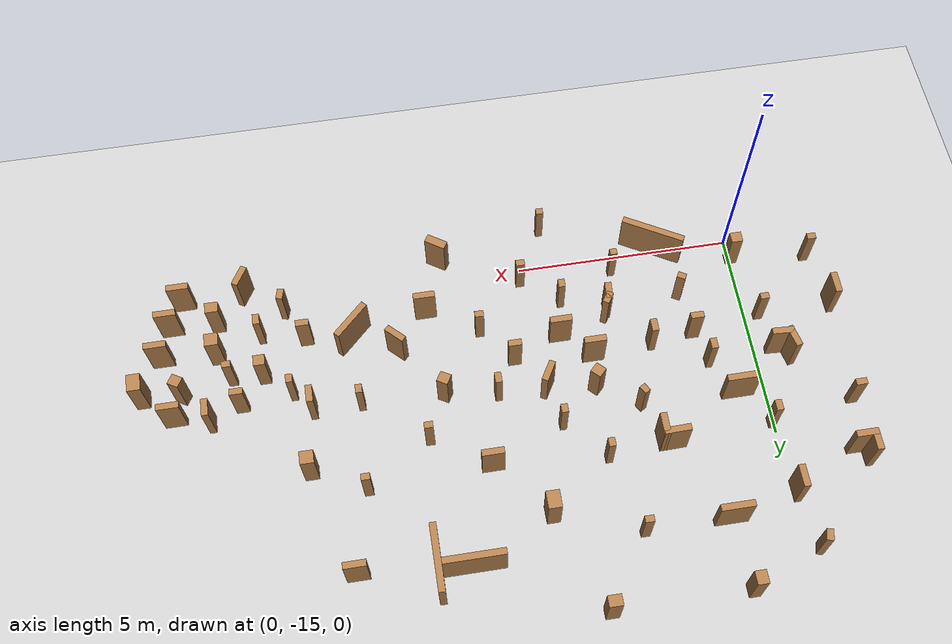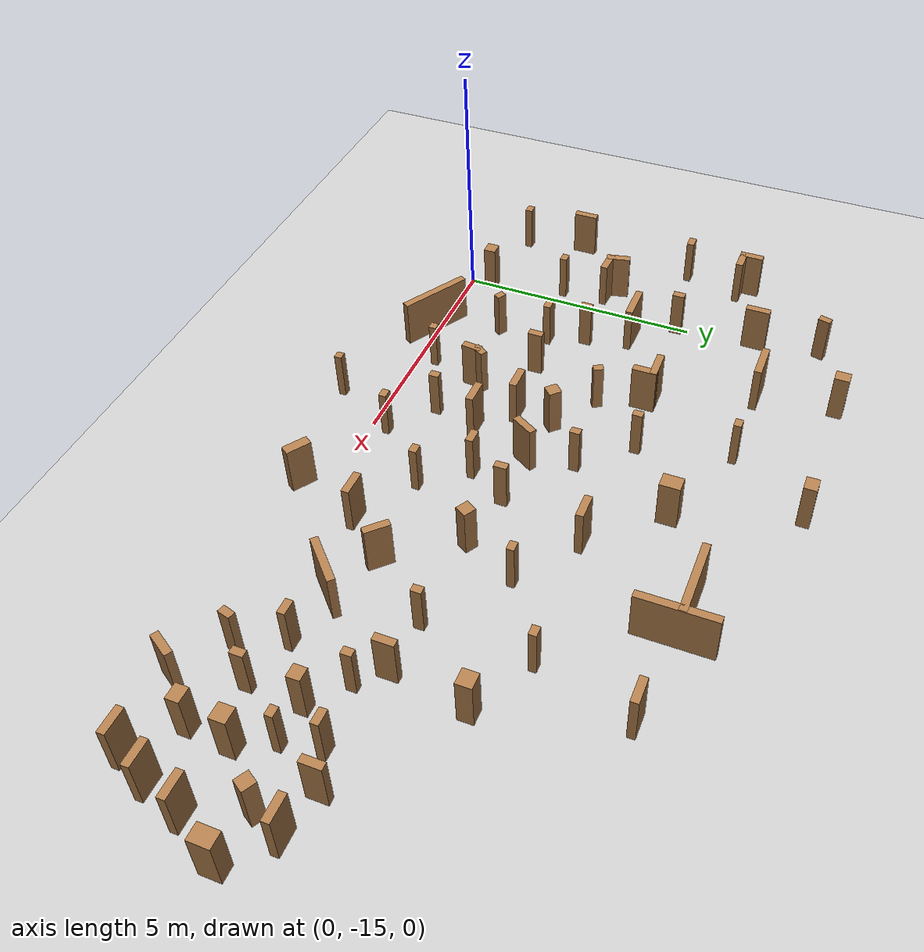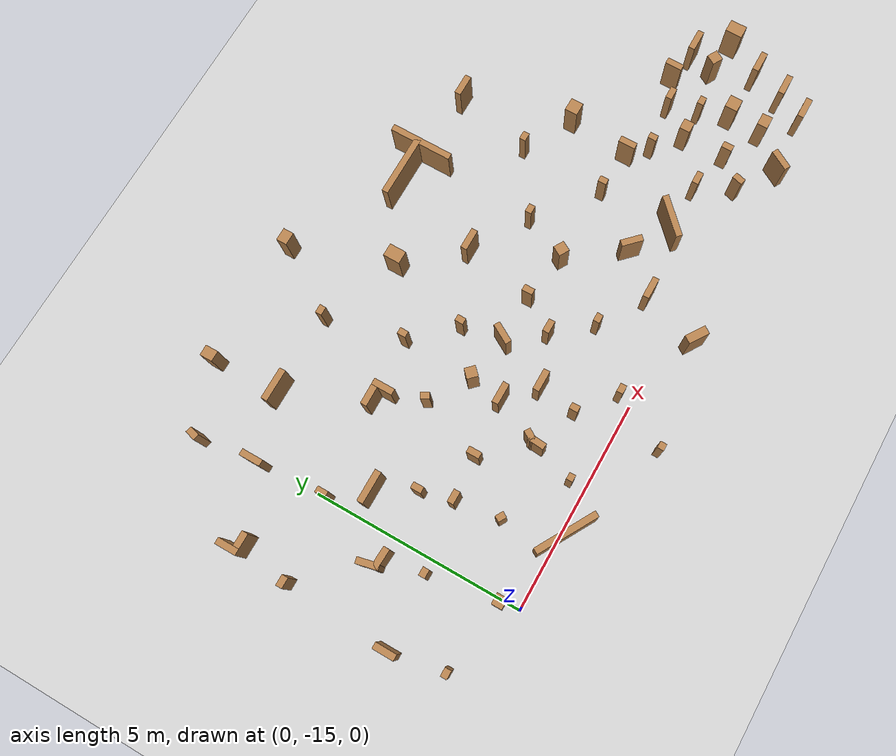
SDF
<sdf version="1.7">
 <world name="default">
  <model name="ground_plane">
   <static>1</static>
   <link name="link">
    <collision name="collision">
     <geometry><plane><normal>0 0 1</normal><size>100 100</size></plane></geometry>
     <surface><friction><ode><mu>100</mu><mu2>50</mu2></ode></friction></surface>
    </collision>
    <visual name="visual">
     <cast_shadows>0</cast_shadows>
     <geometry><plane><normal>0 0 1</normal><size>100 100</size></plane></geometry>
     <material>
      <script><uri>file://media/materials/scripts/gazebo.material</uri><name>Gazebo/Grey</name></script>
     </material>
    </visual>
   </link>
  </model>
  <model name="t1">
   <pose>4.20156 -11.2326 0 0 -0 0</pose>
   <link name="Wall_0">
    <collision name="Wall_0_Collision">
     <geometry><box><size>0.5 0.15 1</size></box></geometry>
     <pose>0 0 0.5 0 -0 0</pose>
    </collision>
    <visual name="Wall_0_Visual">
     <pose>0 0 0.5 0 -0 0</pose>
     <geometry><box><size>0.5 0.15 1</size></box></geometry>
     <material>
      <script><uri>file://media/materials/scripts/gazebo.material</uri><name>Gazebo/Wood</name></script>
      <ambient>1 1 1 1</ambient>
     </material>
     <meta><layer>0</layer></meta>
    </visual>
    <pose>0.174862 -1.84619 0 0 -0 0</pose>
   </link>
   <link name="Wall_10">
    <collision name="Wall_10_Collision">
     <geometry><box><size>0.16 0.15 1</size></box></geometry>
     <pose>0 0 0.5 0 -0 0</pose>
    </collision>
    <visual name="Wall_10_Visual">
     <pose>0 0 0.5 0 -0 0</pose>
     <geometry><box><size>0.16 0.15 1</size></box></geometry>
     <material>
      <script><uri>file://media/materials/scripts/gazebo.material</uri><name>Gazebo/Wood</name></script>
      <ambient>1 1 1 1</ambient>
     </material>
     <meta><layer>0</layer></meta>
    </visual>
    <pose>-1.33848 -3.38558 0 0 -0 0</pose>
   </link>
   <link name="Wall_101">
    <collision name="Wall_101_Collision">
     <geometry><box><size>0.3 0.25 1</size></box></geometry>
     <pose>0 0 0.5 0 -0 0</pose>
    </collision>
    <visual name="Wall_101_Visual">
     <pose>0 0 0.5 0 -0 0</pose>
     <geometry><box><size>0.3 0.25 1</size></box></geometry>
     <material>
      <script><uri>file://media/materials/scripts/gazebo.material</uri><name>Gazebo/Wood</name></script>
      <ambient>1 1 1 1</ambient>
     </material>
     <meta><layer>0</layer></meta>
    </visual>
    <pose>0.24444 4.67323 0 0 -0 0</pose>
   </link>
   <link name="Wall_103">
    <collision name="Wall_103_Collision">
     <geometry><box><size>0.3 0.25 1</size></box></geometry>
     <pose>0 0 0.5 0 -0 0</pose>
    </collision>
    <visual name="Wall_103_Visual">
     <pose>0 0 0.5 0 -0 0</pose>
     <geometry><box><size>0.3 0.25 1</size></box></geometry>
     <material>
      <script><uri>file://media/materials/scripts/gazebo.material</uri><name>Gazebo/Wood</name></script>
      <ambient>1 1 1 1</ambient>
     </material>
     <meta><layer>0</layer></meta>
    </visual>
    <pose>-2.80345 4.66938 0 0 -0 -1.5708</pose>
   </link>
   <link name="Wall_105">
    <collision name="Wall_105_Collision">
     <geometry><box><size>0.4 0.15 1</size></box></geometry>
     <pose>0 0 0.5 0 -0 0</pose>
    </collision>
    <visual name="Wall_105_Visual">
     <pose>0 0 0.5 0 -0 0</pose>
     <geometry><box><size>0.4 0.15 1</size></box></geometry>
     <material>
      <script><uri>file://media/materials/scripts/gazebo.material</uri><name>Gazebo/Wood</name></script>
      <ambient>1 1 1 1</ambient>
     </material>
     <meta><layer>0</layer></meta>
    </visual>
    <pose>5.96232 -0.895745 0 0 -0 -1.5708</pose>
   </link>
   <link name="Wall_12">
    <collision name="Wall_12_Collision">
     <geometry><box><size>0.2 0.15 1</size></box></geometry>
     <pose>0 0 0.5 0 -0 0</pose>
    </collision>
    <visual name="Wall_12_Visual">
     <pose>0 0 0.5 0 -0 0</pose>
     <geometry><box><size>0.2 0.15 1</size></box></geometry>
     <material>
      <script><uri>file://media/materials/scripts/gazebo.material</uri><name>Gazebo/Wood</name></script>
      <ambient>1 1 1 1</ambient>
     </material>
     <meta><layer>0</layer></meta>
    </visual>
    <pose>-1.33098 0.15162 0 0 -0 -1.0472</pose>
   </link>
   <link name="Wall_14">
    <collision name="Wall_14_Collision">
     <geometry><box><size>0.3 0.15 1</size></box></geometry>
     <pose>0 0 0.5 0 -0 0</pose>
    </collision>
    <visual name="Wall_14_Visual">
     <pose>0 0 0.5 0 -0 0</pose>
     <geometry><box><size>0.3 0.15 1</size></box></geometry>
     <material>
      <script><uri>file://media/materials/scripts/gazebo.material</uri><name>Gazebo/Wood</name></script>
      <ambient>1 1 1 1</ambient>
     </material>
     <meta><layer>0</layer></meta>
    </visual>
    <pose>-1.87614 -1.36219 0 0 -0 -1.5708</pose>
   </link>
   <link name="Wall_16">
    <collision name="Wall_16_Collision">
     <geometry><box><size>0.5 0.15 1</size></box></geometry>
     <pose>0 0 0.5 0 -0 0</pose>
    </collision>
    <visual name="Wall_16_Visual">
     <pose>0 0 0.5 0 -0 0</pose>
     <geometry><box><size>0.5 0.15 1</size></box></geometry>
     <material>
      <script><uri>file://media/materials/scripts/gazebo.material</uri><name>Gazebo/Wood</name></script>
      <ambient>1 1 1 1</ambient>
     </material>
     <meta><layer>0</layer></meta>
    </visual>
    <pose>3.92086 -2.06469 0 0 -0 -0.783378</pose>
   </link>
   <link name="Wall_18">
    <collision name="Wall_18_Collision">
     <geometry><box><size>0.2 0.15 1</size></box></geometry>
     <pose>0 0 0.5 0 -0 0</pose>
    </collision>
    <visual name="Wall_18_Visual">
     <pose>0 0 0.5 0 -0 0</pose>
     <geometry><box><size>0.2 0.15 1</size></box></geometry>
     <material>
      <script><uri>file://media/materials/scripts/gazebo.material</uri><name>Gazebo/Wood</name></script>
      <ambient>1 1 1 1</ambient>
     </material>
     <meta><layer>0</layer></meta>
    </visual>
    <pose>0.847759 -3.42904 0 0 -0 0</pose>
   </link>
   <link name="Wall_2">
    <collision name="Wall_2_Collision">
     <geometry><box><size>0.2 0.15 1</size></box></geometry>
     <pose>0 0 0.5 0 -0 0</pose>
    </collision>
    <visual name="Wall_2_Visual">
     <pose>0 0 0.5 0 -0 0</pose>
     <geometry><box><size>0.2 0.15 1</size></box></geometry>
     <material>
      <script><uri>file://media/materials/scripts/gazebo.material</uri><name>Gazebo/Wood</name></script>
      <ambient>1 1 1 1</ambient>
     </material>
     <meta><layer>0</layer></meta>
    </visual>
    <pose>1.98486 -2.25619 0 0 -0 3.14159</pose>
   </link>
   <link name="Wall_21">
    <collision name="Wall_21_Collision">
     <geometry><box><size>0.500017 0.2 1</size></box></geometry>
     <pose>0 0 0.5 0 -0 0</pose>
    </collision>
    <visual name="Wall_21_Visual">
     <pose>0 0 0.5 0 -0 0</pose>
     <geometry><box><size>0.500017 0.2 1</size></box></geometry>
     <material>
      <script><uri>file://media/materials/scripts/gazebo.material</uri><name>Gazebo/Wood</name></script>
      <ambient>1 1 1 1</ambient>
     </material>
     <meta><layer>0</layer></meta>
    </visual>
    <pose>2.69564 -4.29723 0 0 -0 -0.586607</pose>
   </link>
   <link name="Wall_23">
    <collision name="Wall_23_Collision">
     <geometry><box><size>0.16 0.15 1</size></box></geometry>
     <pose>0 0 0.5 0 -0 0</pose>
    </collision>
    <visual name="Wall_23_Visual">
     <pose>0 0 0.5 0 -0 0</pose>
     <geometry><box><size>0.16 0.15 1</size></box></geometry>
     <material>
      <script><uri>file://media/materials/scripts/gazebo.material</uri><name>Gazebo/Wood</name></script>
      <ambient>1 1 1 1</ambient>
     </material>
     <meta><layer>0</layer></meta>
    </visual>
    <pose>0.173217 -4.74438 0 0 -0 0</pose>
   </link>
   <link name="Wall_25">
    <collision name="Wall_25_Collision">
     <geometry><box><size>0.2 0.15 1</size></box></geometry>
     <pose>0 0 0.5 0 -0 0</pose>
    </collision>
    <visual name="Wall_25_Visual">
     <pose>0 0 0.5 0 -0 0</pose>
     <geometry><box><size>0.2 0.15 1</size></box></geometry>
     <material>
      <script><uri>file://media/materials/scripts/gazebo.material</uri><name>Gazebo/Wood</name></script>
      <ambient>1 1 1 1</ambient>
     </material>
     <meta><layer>0</layer></meta>
    </visual>
    <pose>0.492317 0.334728 0 0 -0 -1.5708</pose>
   </link>
   <link name="Wall_27">
    <collision name="Wall_27_Collision">
     <geometry><box><size>0.2 0.15 1</size></box></geometry>
     <pose>0 0 0.5 0 -0 0</pose>
    </collision>
    <visual name="Wall_27_Visual">
     <pose>0 0 0.5 0 -0 0</pose>
     <geometry><box><size>0.2 0.15 1</size></box></geometry>
     <material>
      <script><uri>file://media/materials/scripts/gazebo.material</uri><name>Gazebo/Wood</name></script>
      <ambient>1 1 1 1</ambient>
     </material>
     <meta><layer>0</layer></meta>
    </visual>
    <pose>3.47401 0.25916 0 0 -0 0</pose>
   </link>
   <link name="Wall_29">
    <collision name="Wall_29_Collision">
     <geometry><box><size>0.2 0.15 1</size></box></geometry>
     <pose>0 0 0.5 0 -0 0</pose>
    </collision>
    <visual name="Wall_29_Visual">
     <pose>0 0 0.5 0 -0 0</pose>
     <geometry><box><size>0.2 0.15 1</size></box></geometry>
     <material>
      <script><uri>file://media/materials/scripts/gazebo.material</uri><name>Gazebo/Wood</name></script>
      <ambient>1 1 1 1</ambient>
     </material>
     <meta><layer>0</layer></meta>
    </visual>
    <pose>-2.76454 -2.5089 0 0 -0 -0.523599</pose>
   </link>
   <link name="Wall_31">
    <collision name="Wall_31_Collision">
     <geometry><box><size>0.508166 0.15 1</size></box></geometry>
     <pose>0 0 0.5 0 -0 0</pose>
    </collision>
    <visual name="Wall_31_Visual">
     <pose>0 0 0.5 0 -0 0</pose>
     <geometry><box><size>0.508166 0.15 1</size></box></geometry>
     <material>
      <script><uri>file://media/materials/scripts/gazebo.material</uri><name>Gazebo/Wood</name></script>
      <ambient>1 1 1 1</ambient>
     </material>
     <meta><layer>0</layer></meta>
    </visual>
    <pose>-4.92012 -0.60019 0 0 -0 -1.35685</pose>
   </link>
   <link name="Wall_32">
    <collision name="Wall_32_Collision">
     <geometry><box><size>0.500227 0.15 1</size></box></geometry>
     <pose>0 0 0.5 0 -0 0</pose>
    </collision>
    <visual name="Wall_32_Visual">
     <pose>0 0 0.5 0 -0 0</pose>
     <geometry><box><size>0.500227 0.15 1</size></box></geometry>
     <material>
      <script><uri>file://media/materials/scripts/gazebo.material</uri><name>Gazebo/Wood</name></script>
      <ambient>1 1 1 1</ambient>
     </material>
     <meta><layer>0</layer></meta>
    </visual>
    <pose>-4.70726 -0.769794 0 0 -0 -0.056063</pose>
   </link>
   <link name="Wall_34">
    <collision name="Wall_34_Collision">
     <geometry><box><size>0.26 0.25 1</size></box></geometry>
     <pose>0 0 0.5 0 -0 0</pose>
    </collision>
    <visual name="Wall_34_Visual">
     <pose>0 0 0.5 0 -0 0</pose>
     <geometry><box><size>0.26 0.25 1</size></box></geometry>
     <material>
      <script><uri>file://media/materials/scripts/gazebo.material</uri><name>Gazebo/Wood</name></script>
      <ambient>1 1 1 1</ambient>
     </material>
     <meta><layer>0</layer></meta>
    </visual>
    <pose>-0.411989 -0.452656 0 0 -0 -0.785398</pose>
   </link>
   <link name="Wall_36">
    <collision name="Wall_36_Collision">
     <geometry><box><size>0.26 0.25 1</size></box></geometry>
     <pose>0 0 0.5 0 -0 0</pose>
    </collision>
    <visual name="Wall_36_Visual">
     <pose>0 0 0.5 0 -0 0</pose>
     <geometry><box><size>0.26 0.25 1</size></box></geometry>
     <material>
      <script><uri>file://media/materials/scripts/gazebo.material</uri><name>Gazebo/Wood</name></script>
      <ambient>1 1 1 1</ambient>
     </material>
     <meta><layer>0</layer></meta>
    </visual>
    <pose>-4.25021 -3.31732 0 0 -0 0</pose>
   </link>
   <link name="Wall_38">
    <collision name="Wall_38_Collision">
     <geometry><box><size>0.26 0.25 1</size></box></geometry>
     <pose>0 0 0.5 0 -0 0</pose>
    </collision>
    <visual name="Wall_38_Visual">
     <pose>0 0 0.5 0 -0 0</pose>
     <geometry><box><size>0.26 0.25 1</size></box></geometry>
     <material>
      <script><uri>file://media/materials/scripts/gazebo.material</uri><name>Gazebo/Wood</name></script>
      <ambient>1 1 1 1</ambient>
     </material>
     <meta><layer>0</layer></meta>
    </visual>
    <pose>2.98901 -0.79858 0 0 -0 -0.523599</pose>
   </link>
   <link name="Wall_4">
    <collision name="Wall_4_Collision">
     <geometry><box><size>0.2 0.15 1</size></box></geometry>
     <pose>0 0 0.5 0 -0 0</pose>
    </collision>
    <visual name="Wall_4_Visual">
     <pose>0 0 0.5 0 -0 0</pose>
     <geometry><box><size>0.2 0.15 1</size></box></geometry>
     <material>
      <script><uri>file://media/materials/scripts/gazebo.material</uri><name>Gazebo/Wood</name></script>
      <ambient>1 1 1 1</ambient>
     </material>
     <meta><layer>0</layer></meta>
    </visual>
    <pose>4.8769 -0.840298 0 0 -0 -1.5708</pose>
   </link>
   <link name="Wall_40">
    <collision name="Wall_40_Collision">
     <geometry><box><size>0.290798 0.15 1</size></box></geometry>
     <pose>0 0 0.5 0 -0 0</pose>
    </collision>
    <visual name="Wall_40_Visual">
     <pose>0 0 0.5 0 -0 0</pose>
     <geometry><box><size>0.290798 0.15 1</size></box></geometry>
     <material>
      <script><uri>file://media/materials/scripts/gazebo.material</uri><name>Gazebo/Wood</name></script>
      <ambient>1 1 1 1</ambient>
     </material>
     <meta><layer>0</layer></meta>
    </visual>
    <pose>-0.984833 -2.22049 0 0 -0 -2.12928</pose>
   </link>
   <link name="Wall_41">
    <collision name="Wall_41_Collision">
     <geometry><box><size>0.396924 0.15 1</size></box></geometry>
     <pose>0 0 0.5 0 -0 0</pose>
    </collision>
    <visual name="Wall_41_Visual">
     <pose>0 0 0.5 0 -0 0</pose>
     <geometry><box><size>0.396924 0.15 1</size></box></geometry>
     <material>
      <script><uri>file://media/materials/scripts/gazebo.material</uri><name>Gazebo/Wood</name></script>
      <ambient>1 1 1 1</ambient>
     </material>
     <meta><layer>0</layer></meta>
    </visual>
    <pose>-1.03314 -2.40319 0 0 -0 -1.65999</pose>
   </link>
   <link name="Wall_43">
    <collision name="Wall_43_Collision">
     <geometry><box><size>1 0.15 1</size></box></geometry>
     <pose>0 0 0.5 0 -0 0</pose>
    </collision>
    <visual name="Wall_43_Visual">
     <pose>0 0 0.5 0 -0 0</pose>
     <geometry><box><size>1 0.15 1</size></box></geometry>
     <material>
      <script><uri>file://media/materials/scripts/gazebo.material</uri><name>Gazebo/Wood</name></script>
      <ambient>1 1 1 1</ambient>
     </material>
     <meta><layer>0</layer></meta>
    </visual>
    <pose>4.87736 -2.57969 0 0 -0 -2.35619</pose>
   </link>
   <link name="Wall_45">
    <collision name="Wall_45_Collision">
     <geometry><box><size>1.5 0.15 1</size></box></geometry>
     <pose>0 0 0.5 0 -0 0</pose>
    </collision>
    <visual name="Wall_45_Visual">
     <pose>0 0 0.5 0 -0 0</pose>
     <geometry><box><size>1.5 0.15 1</size></box></geometry>
     <material>
      <script><uri>file://media/materials/scripts/gazebo.material</uri><name>Gazebo/Wood</name></script>
      <ambient>1 1 1 1</ambient>
     </material>
     <meta><layer>0</layer></meta>
    </visual>
    <pose>-2.38364 -3.84369 0 0 -0 -0.523649</pose>
   </link>
   <link name="Wall_47">
    <collision name="Wall_47_Collision">
     <geometry><box><size>0.5 0.15 1</size></box></geometry>
     <pose>0 0 0.5 0 -0 0</pose>
    </collision>
    <visual name="Wall_47_Visual">
     <pose>0 0 0.5 0 -0 0</pose>
     <geometry><box><size>0.5 0.15 1</size></box></geometry>
     <material>
      <script><uri>file://media/materials/scripts/gazebo.material</uri><name>Gazebo/Wood</name></script>
      <ambient>1 1 1 1</ambient>
     </material>
     <meta><layer>0</layer></meta>
    </visual>
    <pose>-6.22714 -1.79019 0 0 -0 -1.5708</pose>
   </link>
   <link name="Wall_49">
    <collision name="Wall_49_Collision">
     <geometry><box><size>0.2 0.15 1</size></box></geometry>
     <pose>0 0 0.5 0 -0 0</pose>
    </collision>
    <visual name="Wall_49_Visual">
     <pose>0 0 0.5 0 -0 0</pose>
     <geometry><box><size>0.2 0.15 1</size></box></geometry>
     <material>
      <script><uri>file://media/materials/scripts/gazebo.material</uri><name>Gazebo/Wood</name></script>
      <ambient>1 1 1 1</ambient>
     </material>
     <meta><layer>0</layer></meta>
    </visual>
    <pose>-4.51214 -1.69619 0 0 -0 0</pose>
   </link>
   <link name="Wall_51">
    <collision name="Wall_51_Collision">
     <geometry><box><size>0.598262 0.15 1</size></box></geometry>
     <pose>0 0 0.5 0 -0 0</pose>
    </collision>
    <visual name="Wall_51_Visual">
     <pose>0 0 0.5 0 -0 0</pose>
     <geometry><box><size>0.598262 0.15 1</size></box></geometry>
     <material>
      <script><uri>file://media/materials/scripts/gazebo.material</uri><name>Gazebo/Wood</name></script>
      <ambient>1 1 1 1</ambient>
     </material>
     <meta><layer>0</layer></meta>
    </visual>
    <pose>-1.84166 1.19866 0 0 -0 0.021322</pose>
   </link>
   <link name="Wall_52">
    <collision name="Wall_52_Collision">
     <geometry><box><size>0.5 0.15 1</size></box></geometry>
     <pose>0 0 0.5 0 -0 0</pose>
    </collision>
    <visual name="Wall_52_Visual">
     <pose>0 0 0.5 0 -0 0</pose>
     <geometry><box><size>0.5 0.15 1</size></box></geometry>
     <material>
      <script><uri>file://media/materials/scripts/gazebo.material</uri><name>Gazebo/Wood</name></script>
      <ambient>1 1 1 1</ambient>
     </material>
     <meta><layer>0</layer></meta>
    </visual>
    <pose>-1.60237 1.02843 0 0 -0 -1.5708</pose>
   </link>
   <link name="Wall_54">
    <collision name="Wall_54_Collision">
     <geometry><box><size>0.5 0.15 1</size></box></geometry>
     <pose>0 0 0.5 0 -0 0</pose>
    </collision>
    <visual name="Wall_54_Visual">
     <pose>0 0 0.5 0 -0 0</pose>
     <geometry><box><size>0.5 0.15 1</size></box></geometry>
     <material>
      <script><uri>file://media/materials/scripts/gazebo.material</uri><name>Gazebo/Wood</name></script>
      <ambient>1 1 1 1</ambient>
     </material>
     <meta><layer>0</layer></meta>
    </visual>
    <pose>2.18786 1.08981 0 0 -0 0</pose>
   </link>
   <link name="Wall_56">
    <collision name="Wall_56_Collision">
     <geometry><box><size>0.25 0.15 1</size></box></geometry>
     <pose>0 0 0.5 0 -0 0</pose>
    </collision>
    <visual name="Wall_56_Visual">
     <pose>0 0 0.5 0 -0 0</pose>
     <geometry><box><size>0.25 0.15 1</size></box></geometry>
     <material>
      <script><uri>file://media/materials/scripts/gazebo.material</uri><name>Gazebo/Wood</name></script>
      <ambient>1 1 1 1</ambient>
     </material>
     <meta><layer>0</layer></meta>
    </visual>
    <pose>-4.14014 0.99381 0 0 -0 -1.5708</pose>
   </link>
   <link name="Wall_58">
    <collision name="Wall_58_Collision">
     <geometry><box><size>0.5 0.15 1</size></box></geometry>
     <pose>0 0 0.5 0 -0 0</pose>
    </collision>
    <visual name="Wall_58_Visual">
     <pose>0 0 0.5 0 -0 0</pose>
     <geometry><box><size>0.5 0.15 1</size></box></geometry>
     <material>
      <script><uri>file://media/materials/scripts/gazebo.material</uri><name>Gazebo/Wood</name></script>
      <ambient>1 1 1 1</ambient>
     </material>
     <meta><layer>0</layer></meta>
    </visual>
    <pose>3.15886 -2.93519 0 0 -0 0</pose>
   </link>
   <link name="Wall_6">
    <collision name="Wall_6_Collision">
     <geometry><box><size>0.25 0.15 1</size></box></geometry>
     <pose>0 0 0.5 0 -0 0</pose>
    </collision>
    <visual name="Wall_6_Visual">
     <pose>0 0 0.5 0 -0 0</pose>
     <geometry><box><size>0.25 0.15 1</size></box></geometry>
     <material>
      <script><uri>file://media/materials/scripts/gazebo.material</uri><name>Gazebo/Wood</name></script>
      <ambient>1 1 1 1</ambient>
     </material>
     <meta><layer>0</layer></meta>
    </visual>
    <pose>1.80473 -0.621958 0 0 -0 -1.5708</pose>
   </link>
   <link name="Wall_60">
    <collision name="Wall_60_Collision">
     <geometry><box><size>0.3 0.15 1</size></box></geometry>
     <pose>0 0 0.5 0 -0 0</pose>
    </collision>
    <visual name="Wall_60_Visual">
     <pose>0 0 0.5 0 -0 0</pose>
     <geometry><box><size>0.3 0.15 1</size></box></geometry>
     <material>
      <script><uri>file://media/materials/scripts/gazebo.material</uri><name>Gazebo/Wood</name></script>
      <ambient>1 1 1 1</ambient>
     </material>
     <meta><layer>0</layer></meta>
    </visual>
    <pose>1.30104 -1.40827 0 0 -0 0</pose>
   </link>
   <link name="Wall_62">
    <collision name="Wall_62_Collision">
     <geometry><box><size>0.2 0.15 1</size></box></geometry>
     <pose>0 0 0.5 0 -0 0</pose>
    </collision>
    <visual name="Wall_62_Visual">
     <pose>0 0 0.5 0 -0 0</pose>
     <geometry><box><size>0.2 0.15 1</size></box></geometry>
     <material>
      <script><uri>file://media/materials/scripts/gazebo.material</uri><name>Gazebo/Wood</name></script>
      <ambient>1 1 1 1</ambient>
     </material>
     <meta><layer>0</layer></meta>
    </visual>
    <pose>-0.369971 1.27302 0 0 -0 -1.5708</pose>
   </link>
   <link name="Wall_64">
    <collision name="Wall_64_Collision">
     <geometry><box><size>0.5 0.15 1</size></box></geometry>
     <pose>0 0 0.5 0 -0 0</pose>
    </collision>
    <visual name="Wall_64_Visual">
     <pose>0 0 0.5 0 -0 0</pose>
     <geometry><box><size>0.5 0.15 1</size></box></geometry>
     <material>
      <script><uri>file://media/materials/scripts/gazebo.material</uri><name>Gazebo/Wood</name></script>
      <ambient>1 1 1 1</ambient>
     </material>
     <meta><layer>0</layer></meta>
    </visual>
    <pose>0.676362 -0.61169 0 0 -0 -2.09455</pose>
   </link>
   <link name="Wall_66">
    <collision name="Wall_66_Collision">
     <geometry><box><size>0.2 0.15 1</size></box></geometry>
     <pose>0 0 0.5 0 -0 0</pose>
    </collision>
    <visual name="Wall_66_Visual">
     <pose>0 0 0.5 0 -0 0</pose>
     <geometry><box><size>0.2 0.15 1</size></box></geometry>
     <material>
      <script><uri>file://media/materials/scripts/gazebo.material</uri><name>Gazebo/Wood</name></script>
      <ambient>1 1 1 1</ambient>
     </material>
     <meta><layer>0</layer></meta>
    </visual>
    <pose>0.000119 -2.75171 0 0 -0 -1.5708</pose>
   </link>
   <link name="Wall_68">
    <collision name="Wall_68_Collision">
     <geometry><box><size>0.75 0.15 1</size></box></geometry>
     <pose>0 0 0.5 0 -0 0</pose>
    </collision>
    <visual name="Wall_68_Visual">
     <pose>0 0 0.5 0 -0 0</pose>
     <geometry><box><size>0.75 0.15 1</size></box></geometry>
     <material>
      <script><uri>file://media/materials/scripts/gazebo.material</uri><name>Gazebo/Wood</name></script>
      <ambient>1 1 1 1</ambient>
     </material>
     <meta><layer>0</layer></meta>
    </visual>
    <pose>-3.56314 0.18781 0 0 -0 0</pose>
   </link>
   <link name="Wall_70">
    <collision name="Wall_70_Collision">
     <geometry><box><size>0.3 0.15 1</size></box></geometry>
     <pose>0 0 0.5 0 -0 0</pose>
    </collision>
    <visual name="Wall_70_Visual">
     <pose>0 0 0.5 0 -0 0</pose>
     <geometry><box><size>0.3 0.15 1</size></box></geometry>
     <material>
      <script><uri>file://media/materials/scripts/gazebo.material</uri><name>Gazebo/Wood</name></script>
      <ambient>1 1 1 1</ambient>
     </material>
     <meta><layer>0</layer></meta>
    </visual>
    <pose>-2.8856 -1.45453 0 0 -0 0</pose>
   </link>
   <link name="Wall_72">
    <collision name="Wall_72_Collision">
     <geometry><box><size>0.2 0.15 1</size></box></geometry>
     <pose>0 0 0.5 0 -0 0</pose>
    </collision>
    <visual name="Wall_72_Visual">
     <pose>0 0 0.5 0 -0 0</pose>
     <geometry><box><size>0.2 0.15 1</size></box></geometry>
     <material>
      <script><uri>file://media/materials/scripts/gazebo.material</uri><name>Gazebo/Wood</name></script>
      <ambient>1 1 1 1</ambient>
     </material>
     <meta><layer>0</layer></meta>
    </visual>
    <pose>4.95194 1.22862 0 0 -0 0</pose>
   </link>
   <link name="Wall_74">
    <collision name="Wall_74_Collision">
     <geometry><box><size>0.2 0.15 1</size></box></geometry>
     <pose>0 0 0.5 0 -0 0</pose>
    </collision>
    <visual name="Wall_74_Visual">
     <pose>0 0 0.5 0 -0 0</pose>
     <geometry><box><size>0.2 0.15 1</size></box></geometry>
     <material>
      <script><uri>file://media/materials/scripts/gazebo.material</uri><name>Gazebo/Wood</name></script>
      <ambient>1 1 1 1</ambient>
     </material>
     <meta><layer>0</layer></meta>
    </visual>
    <pose>-5.98884 -3.07367 0 0 -0 0</pose>
   </link>
   <link name="Wall_76">
    <collision name="Wall_76_Collision">
     <geometry><box><size>0.5 0.15 1</size></box></geometry>
     <pose>0 0 0.5 0 -0 0</pose>
    </collision>
    <visual name="Wall_76_Visual">
     <pose>0 0 0.5 0 -0 0</pose>
     <geometry><box><size>0.5 0.15 1</size></box></geometry>
     <material>
      <script><uri>file://media/materials/scripts/gazebo.material</uri><name>Gazebo/Wood</name></script>
      <ambient>1 1 1 1</ambient>
     </material>
     <meta><layer>0</layer></meta>
    </visual>
    <pose>-0.496138 -1.22319 0 0 -0 0</pose>
   </link>
   <link name="Wall_78">
    <collision name="Wall_78_Collision">
     <geometry><box><size>0.31 0.3 1</size></box></geometry>
     <pose>0 0 0.5 0 -0 0</pose>
    </collision>
    <visual name="Wall_78_Visual">
     <pose>0 0 0.5 0 -0 0</pose>
     <geometry><box><size>0.31 0.3 1</size></box></geometry>
     <material>
      <script><uri>file://media/materials/scripts/gazebo.material</uri><name>Gazebo/Wood</name></script>
      <ambient>1 1 1 1</ambient>
     </material>
     <meta><layer>0</layer></meta>
    </visual>
    <pose>6.14714 0.591618 0 0 -0 0</pose>
   </link>
   <link name="Wall_8">
    <collision name="Wall_8_Collision">
     <geometry><box><size>0.25 0.15 1</size></box></geometry>
     <pose>0 0 0.5 0 -0 0</pose>
    </collision>
    <visual name="Wall_8_Visual">
     <pose>0 0 0.5 0 -0 0</pose>
     <geometry><box><size>0.25 0.15 1</size></box></geometry>
     <material>
      <script><uri>file://media/materials/scripts/gazebo.material</uri><name>Gazebo/Wood</name></script>
      <ambient>1 1 1 1</ambient>
     </material>
     <meta><layer>0</layer></meta>
    </visual>
    <pose>-3.09214 -0.69819 0 0 -0 -1.5708</pose>
   </link>
   <link name="Wall_80">
    <collision name="Wall_80_Collision">
     <geometry><box><size>0.4 0.3 1</size></box></geometry>
     <pose>0 0 0.5 0 -0 0</pose>
    </collision>
    <visual name="Wall_80_Visual">
     <pose>0 0 0.5 0 -0 0</pose>
     <geometry><box><size>0.4 0.3 1</size></box></geometry>
     <material>
      <script><uri>file://media/materials/scripts/gazebo.material</uri><name>Gazebo/Wood</name></script>
      <ambient>1 1 1 1</ambient>
     </material>
     <meta><layer>0</layer></meta>
    </visual>
    <pose>1.08922 2.35187 0 0 -0 1.5708</pose>
   </link>
   <link name="Wall_82">
    <collision name="Wall_82_Collision">
     <geometry><box><size>1.5 0.15 1</size></box></geometry>
     <pose>0 0 0.5 0 -0 0</pose>
    </collision>
    <visual name="Wall_82_Visual">
     <pose>0 0 0.5 0 -0 0</pose>
     <geometry><box><size>1.5 0.15 1</size></box></geometry>
     <material>
      <script><uri>file://media/materials/scripts/gazebo.material</uri><name>Gazebo/Wood</name></script>
      <ambient>1 1 1 1</ambient>
     </material>
     <meta><layer>0</layer></meta>
    </visual>
    <pose>3.68286 3.19981 0 0 -0 -1.5708</pose>
   </link>
   <link name="Wall_84">
    <collision name="Wall_84_Collision">
     <geometry><box><size>1.5 0.15 1</size></box></geometry>
     <pose>0 0 0.5 0 -0 0</pose>
    </collision>
    <visual name="Wall_84_Visual">
     <pose>0 0 0.5 0 -0 0</pose>
     <geometry><box><size>1.5 0.15 1</size></box></geometry>
     <material>
      <script><uri>file://media/materials/scripts/gazebo.material</uri><name>Gazebo/Wood</name></script>
      <ambient>1 1 1 1</ambient>
     </material>
     <meta><layer>0</layer></meta>
    </visual>
    <pose>2.99013 3.29827 0 0 -0 0</pose>
   </link>
   <link name="Wall_86">
    <collision name="Wall_86_Collision">
     <geometry><box><size>0.75 0.15 1</size></box></geometry>
     <pose>0 0 0.5 0 -0 0</pose>
    </collision>
    <visual name="Wall_86_Visual">
     <pose>0 0 0.5 0 -0 0</pose>
     <geometry><box><size>0.75 0.15 1</size></box></geometry>
     <material>
      <script><uri>file://media/materials/scripts/gazebo.material</uri><name>Gazebo/Wood</name></script>
      <ambient>1 1 1 1</ambient>
     </material>
     <meta><layer>0</layer></meta>
    </visual>
    <pose>-2.70314 3.09481 0 0 -0 0</pose>
   </link>
   <link name="Wall_88">
    <collision name="Wall_88_Collision">
     <geometry><box><size>0.5 0.15 1</size></box></geometry>
     <pose>0 0 0.5 0 -0 0</pose>
    </collision>
    <visual name="Wall_88_Visual">
     <pose>0 0 0.5 0 -0 0</pose>
     <geometry><box><size>0.5 0.15 1</size></box></geometry>
     <material>
      <script><uri>file://media/materials/scripts/gazebo.material</uri><name>Gazebo/Wood</name></script>
      <ambient>1 1 1 1</ambient>
     </material>
     <meta><layer>0</layer></meta>
    </visual>
    <pose>-6.03614 2.09581 0 0 -0 -1.5708</pose>
   </link>
   <link name="Wall_89">
    <collision name="Wall_89_Collision">
     <geometry><box><size>0.5 0.15 1</size></box></geometry>
     <pose>0 0 0.5 0 -0 0</pose>
    </collision>
    <visual name="Wall_89_Visual">
     <pose>0 0 0.5 0 -0 0</pose>
     <geometry><box><size>0.5 0.15 1</size></box></geometry>
     <material>
      <script><uri>file://media/materials/scripts/gazebo.material</uri><name>Gazebo/Wood</name></script>
      <ambient>1 1 1 1</ambient>
     </material>
     <meta><layer>0</layer></meta>
    </visual>
    <pose>-5.86114 1.92081 0 0 -0 0</pose>
   </link>
   <link name="Wall_91">
    <collision name="Wall_91_Collision">
     <geometry><box><size>0.25 0.15 1</size></box></geometry>
     <pose>0 0 0.5 0 -0 0</pose>
    </collision>
    <visual name="Wall_91_Visual">
     <pose>0 0 0.5 0 -0 0</pose>
     <geometry><box><size>0.25 0.15 1</size></box></geometry>
     <material>
      <script><uri>file://media/materials/scripts/gazebo.material</uri><name>Gazebo/Wood</name></script>
      <ambient>1 1 1 1</ambient>
     </material>
     <meta><layer>0</layer></meta>
    </visual>
    <pose>-6.07714 0.73081 0 0 -0 0</pose>
   </link>
   <link name="Wall_93">
    <collision name="Wall_93_Collision">
     <geometry><box><size>0.2 0.15 1</size></box></geometry>
     <pose>0 0 0.5 0 -0 0</pose>
    </collision>
    <visual name="Wall_93_Visual">
     <pose>0 0 0.5 0 -0 0</pose>
     <geometry><box><size>0.2 0.15 1</size></box></geometry>
     <material>
      <script><uri>file://media/materials/scripts/gazebo.material</uri><name>Gazebo/Wood</name></script>
      <ambient>1 1 1 1</ambient>
     </material>
     <meta><layer>0</layer></meta>
    </visual>
    <pose>-0.805032 3.09018 0 0 -0 0</pose>
   </link>
   <link name="Wall_95">
    <collision name="Wall_95_Collision">
     <geometry><box><size>0.25 0.15 1</size></box></geometry>
     <pose>0 0 0.5 0 -0 0</pose>
    </collision>
    <visual name="Wall_95_Visual">
     <pose>0 0 0.5 0 -0 0</pose>
     <geometry><box><size>0.25 0.15 1</size></box></geometry>
     <material>
      <script><uri>file://media/materials/scripts/gazebo.material</uri><name>Gazebo/Wood</name></script>
      <ambient>1 1 1 1</ambient>
     </material>
     <meta><layer>0</layer></meta>
    </visual>
    <pose>-4.42814 4.01331 0 0 -0 -1.83268</pose>
   </link>
   <link name="Wall_97">
    <collision name="Wall_97_Collision">
     <geometry><box><size>0.5 0.15 1</size></box></geometry>
     <pose>0 0 0.5 0 -0 0</pose>
    </collision>
    <visual name="Wall_97_Visual">
     <pose>0 0 0.5 0 -0 0</pose>
     <geometry><box><size>0.5 0.15 1</size></box></geometry>
     <material>
      <script><uri>file://media/materials/scripts/gazebo.material</uri><name>Gazebo/Wood</name></script>
      <ambient>1 1 1 1</ambient>
     </material>
     <meta><layer>0</layer></meta>
    </visual>
    <pose>5.38186 3.08981 0 0 -0 0</pose>
   </link>
   <link name="Wall_99">
    <collision name="Wall_99_Collision">
     <geometry><box><size>0.5 0.15 1</size></box></geometry>
     <pose>0 0 0.5 0 -0 0</pose>
    </collision>
    <visual name="Wall_99_Visual">
     <pose>0 0 0.5 0 -0 0</pose>
     <geometry><box><size>0.5 0.15 1</size></box></geometry>
     <material>
      <script><uri>file://media/materials/scripts/gazebo.material</uri><name>Gazebo/Wood</name></script>
      <ambient>1 1 1 1</ambient>
     </material>
     <meta><layer>0</layer></meta>
    </visual>
    <pose>-4.25314 2.66081 0 0 -0 -1.5708</pose>
   </link>
   <static>1</static>
  </model>
  <model name="t7">
   <pose>13.8931 -14.1993 0 0 -0 0</pose>
   <link name="Wall_0">
    <collision name="Wall_0_Collision">
     <geometry><box><size>0.5 0.15 1</size></box></geometry>
     <pose>0 0 0.5 0 -0 0</pose>
    </collision>
    <visual name="Wall_0_Visual">
     <pose>0 0 0.5 0 -0 0</pose>
     <geometry><box><size>0.5 0.15 1</size></box></geometry>
     <material>
      <script><uri>file://media/materials/scripts/gazebo.material</uri><name>Gazebo/Wood</name></script>
      <ambient>1 1 1 1</ambient>
     </material>
     <meta><layer>0</layer></meta>
    </visual>
    <pose>-0.649487 1.88869 0 0 -0 0</pose>
   </link>
   <link name="Wall_101">
    <collision name="Wall_101_Collision">
     <geometry><box><size>0.3 0.25 1</size></box></geometry>
     <pose>0 0 0.5 0 -0 0</pose>
    </collision>
    <visual name="Wall_101_Visual">
     <pose>0 0 0.5 0 -0 0</pose>
     <geometry><box><size>0.3 0.25 1</size></box></geometry>
     <material>
      <script><uri>file://media/materials/scripts/gazebo.material</uri><name>Gazebo/Wood</name></script>
      <ambient>1 1 1 1</ambient>
     </material>
     <meta><layer>0</layer></meta>
    </visual>
    <pose>-1.7299 -0.40612 0 0 -0 0</pose>
   </link>
   <link name="Wall_105">
    <collision name="Wall_105_Collision">
     <geometry><box><size>0.4 0.15 1</size></box></geometry>
     <pose>0 0 0.5 0 -0 0</pose>
    </collision>
    <visual name="Wall_105_Visual">
     <pose>0 0 0.5 0 -0 0</pose>
     <geometry><box><size>0.4 0.15 1</size></box></geometry>
     <material>
      <script><uri>file://media/materials/scripts/gazebo.material</uri><name>Gazebo/Wood</name></script>
      <ambient>1 1 1 1</ambient>
     </material>
     <meta><layer>0</layer></meta>
    </visual>
    <pose>-1.44962 2.04439 0 0 -0 -1.5708</pose>
   </link>
   <link name="Wall_36">
    <collision name="Wall_36_Collision">
     <geometry><box><size>0.26 0.25 1</size></box></geometry>
     <pose>0 0 0.5 0 -0 0</pose>
    </collision>
    <visual name="Wall_36_Visual">
     <pose>0 0 0.5 0 -0 0</pose>
     <geometry><box><size>0.26 0.25 1</size></box></geometry>
     <material>
      <script><uri>file://media/materials/scripts/gazebo.material</uri><name>Gazebo/Wood</name></script>
      <ambient>1 1 1 1</ambient>
     </material>
     <meta><layer>0</layer></meta>
    </visual>
    <pose>-2.70321 1.09078 0 0 -0 0</pose>
   </link>
   <link name="Wall_38">
    <collision name="Wall_38_Collision">
     <geometry><box><size>0.26 0.25 1</size></box></geometry>
     <pose>0 0 0.5 0 -0 0</pose>
    </collision>
    <visual name="Wall_38_Visual">
     <pose>0 0 0.5 0 -0 0</pose>
     <geometry><box><size>0.26 0.25 1</size></box></geometry>
     <material>
      <script><uri>file://media/materials/scripts/gazebo.material</uri><name>Gazebo/Wood</name></script>
      <ambient>1 1 1 1</ambient>
     </material>
     <meta><layer>0</layer></meta>
    </visual>
    <pose>-0.842821 1.30664 0 0 -0 -0.523599</pose>
   </link>
   <link name="Wall_54">
    <collision name="Wall_54_Collision">
     <geometry><box><size>0.5 0.15 1</size></box></geometry>
     <pose>0 0 0.5 0 -0 0</pose>
    </collision>
    <visual name="Wall_54_Visual">
     <pose>0 0 0.5 0 -0 0</pose>
     <geometry><box><size>0.5 0.15 1</size></box></geometry>
     <material>
      <script><uri>file://media/materials/scripts/gazebo.material</uri><name>Gazebo/Wood</name></script>
      <ambient>1 1 1 1</ambient>
     </material>
     <meta><layer>0</layer></meta>
    </visual>
    <pose>-0.981633 -1.06267 0 0 -0 0</pose>
   </link>
   <link name="Wall_58">
    <collision name="Wall_58_Collision">
     <geometry><box><size>0.5 0.15 1</size></box></geometry>
     <pose>0 0 0.5 0 -0 0</pose>
    </collision>
    <visual name="Wall_58_Visual">
     <pose>0 0 0.5 0 -0 0</pose>
     <geometry><box><size>0.5 0.15 1</size></box></geometry>
     <material>
      <script><uri>file://media/materials/scripts/gazebo.material</uri><name>Gazebo/Wood</name></script>
      <ambient>1 1 1 1</ambient>
     </material>
     <meta><layer>0</layer></meta>
    </visual>
    <pose>-0.425004 0.347148 0 0 -0 0</pose>
   </link>
   <link name="Wall_60">
    <collision name="Wall_60_Collision">
     <geometry><box><size>0.3 0.15 1</size></box></geometry>
     <pose>0 0 0.5 0 -0 0</pose>
    </collision>
    <visual name="Wall_60_Visual">
     <pose>0 0 0.5 0 -0 0</pose>
     <geometry><box><size>0.3 0.15 1</size></box></geometry>
     <material>
      <script><uri>file://media/materials/scripts/gazebo.material</uri><name>Gazebo/Wood</name></script>
      <ambient>1 1 1 1</ambient>
     </material>
     <meta><layer>0</layer></meta>
    </visual>
    <pose>-3.72546 0.303649 0 0 -0 0</pose>
   </link>
   <link name="Wall_64">
    <collision name="Wall_64_Collision">
     <geometry><box><size>0.499906 0.15 1</size></box></geometry>
     <pose>0 0 0.5 0 -0 0</pose>
    </collision>
    <visual name="Wall_64_Visual">
     <pose>0 0 0.5 0 -0 0</pose>
     <geometry><box><size>0.499906 0.15 1</size></box></geometry>
     <material>
      <script><uri>file://media/materials/scripts/gazebo.material</uri><name>Gazebo/Wood</name></script>
      <ambient>1 1 1 1</ambient>
     </material>
     <meta><layer>0</layer></meta>
    </visual>
    <pose>-2.40422 -1.13934 0 0 -0 -2.09455</pose>
   </link>
   <link name="Wall_66">
    <collision name="Wall_66_Collision">
     <geometry><box><size>0.2 0.15 1</size></box></geometry>
     <pose>0 0 0.5 0 -0 0</pose>
    </collision>
    <visual name="Wall_66_Visual">
     <pose>0 0 0.5 0 -0 0</pose>
     <geometry><box><size>0.2 0.15 1</size></box></geometry>
     <material>
      <script><uri>file://media/materials/scripts/gazebo.material</uri><name>Gazebo/Wood</name></script>
      <ambient>1 1 1 1</ambient>
     </material>
     <meta><layer>0</layer></meta>
    </visual>
    <pose>-3.32256 1.63712 0 0 -0 -1.5708</pose>
   </link>
   <link name="Wall_70">
    <collision name="Wall_70_Collision">
     <geometry><box><size>0.3 0.15 1</size></box></geometry>
     <pose>0 0 0.5 0 -0 0</pose>
    </collision>
    <visual name="Wall_70_Visual">
     <pose>0 0 0.5 0 -0 0</pose>
     <geometry><box><size>0.3 0.15 1</size></box></geometry>
     <material>
      <script><uri>file://media/materials/scripts/gazebo.material</uri><name>Gazebo/Wood</name></script>
      <ambient>1 1 1 1</ambient>
     </material>
     <meta><layer>0</layer></meta>
    </visual>
    <pose>-2.14832 1.77582 0 0 -0 0</pose>
   </link>
   <link name="Wall_74">
    <collision name="Wall_74_Collision">
     <geometry><box><size>0.2 0.15 1</size></box></geometry>
     <pose>0 0 0.5 0 -0 0</pose>
    </collision>
    <visual name="Wall_74_Visual">
     <pose>0 0 0.5 0 -0 0</pose>
     <geometry><box><size>0.2 0.15 1</size></box></geometry>
     <material>
      <script><uri>file://media/materials/scripts/gazebo.material</uri><name>Gazebo/Wood</name></script>
      <ambient>1 1 1 1</ambient>
     </material>
     <meta><layer>0</layer></meta>
    </visual>
    <pose>-1.97481 1.07494 0 0 -0 0</pose>
   </link>
   <link name="Wall_78">
    <collision name="Wall_78_Collision">
     <geometry><box><size>0.31 0.3 1</size></box></geometry>
     <pose>0 0 0.5 0 -0 0</pose>
    </collision>
    <visual name="Wall_78_Visual">
     <pose>0 0 0.5 0 -0 0</pose>
     <geometry><box><size>0.31 0.3 1</size></box></geometry>
     <material>
      <script><uri>file://media/materials/scripts/gazebo.material</uri><name>Gazebo/Wood</name></script>
      <ambient>1 1 1 1</ambient>
     </material>
     <meta><layer>0</layer></meta>
    </visual>
    <pose>-1.67805 0.407964 0 0 -0 0</pose>
   </link>
   <link name="Wall_8">
    <collision name="Wall_8_Collision">
     <geometry><box><size>0.25 0.15 1</size></box></geometry>
     <pose>0 0 0.5 0 -0 0</pose>
    </collision>
    <visual name="Wall_8_Visual">
     <pose>0 0 0.5 0 -0 0</pose>
     <geometry><box><size>0.25 0.15 1</size></box></geometry>
     <material>
      <script><uri>file://media/materials/scripts/gazebo.material</uri><name>Gazebo/Wood</name></script>
      <ambient>1 1 1 1</ambient>
     </material>
     <meta><layer>0</layer></meta>
    </visual>
    <pose>-2.70615 0.053388 0 0 -0 -1.5708</pose>
   </link>
   <link name="Wall_80">
    <collision name="Wall_80_Collision">
     <geometry><box><size>0.4 0.3 1</size></box></geometry>
     <pose>0 0 0.5 0 -0 0</pose>
    </collision>
    <visual name="Wall_80_Visual">
     <pose>0 0 0.5 0 -0 0</pose>
     <geometry><box><size>0.4 0.3 1</size></box></geometry>
     <material>
      <script><uri>file://media/materials/scripts/gazebo.material</uri><name>Gazebo/Wood</name></script>
      <ambient>1 1 1 1</ambient>
     </material>
     <meta><layer>0</layer></meta>
    </visual>
    <pose>0.066257 1.20372 0 0 -0 1.5708</pose>
   </link>
   <link name="Wall_95">
    <collision name="Wall_95_Collision">
     <geometry><box><size>0.250424 0.15 1</size></box></geometry>
     <pose>0 0 0.5 0 -0 0</pose>
    </collision>
    <visual name="Wall_95_Visual">
     <pose>0 0 0.5 0 -0 0</pose>
     <geometry><box><size>0.250424 0.15 1</size></box></geometry>
     <material>
      <script><uri>file://media/materials/scripts/gazebo.material</uri><name>Gazebo/Wood</name></script>
      <ambient>1 1 1 1</ambient>
     </material>
     <meta><layer>0</layer></meta>
    </visual>
    <pose>-3.29392 -0.515931 0 0 -0 -1.83268</pose>
   </link>
   <link name="Wall_97">
    <collision name="Wall_97_Collision">
     <geometry><box><size>0.5 0.15 1</size></box></geometry>
     <pose>0 0 0.5 0 -0 0</pose>
    </collision>
    <visual name="Wall_97_Visual">
     <pose>0 0 0.5 0 -0 0</pose>
     <geometry><box><size>0.5 0.15 1</size></box></geometry>
     <material>
      <script><uri>file://media/materials/scripts/gazebo.material</uri><name>Gazebo/Wood</name></script>
      <ambient>1 1 1 1</ambient>
     </material>
     <meta><layer>0</layer></meta>
    </visual>
    <pose>-0.667027 -0.419912 0 0 -0 0</pose>
   </link>
   <static>1</static>
  </model>
 </world>
</sdf>
